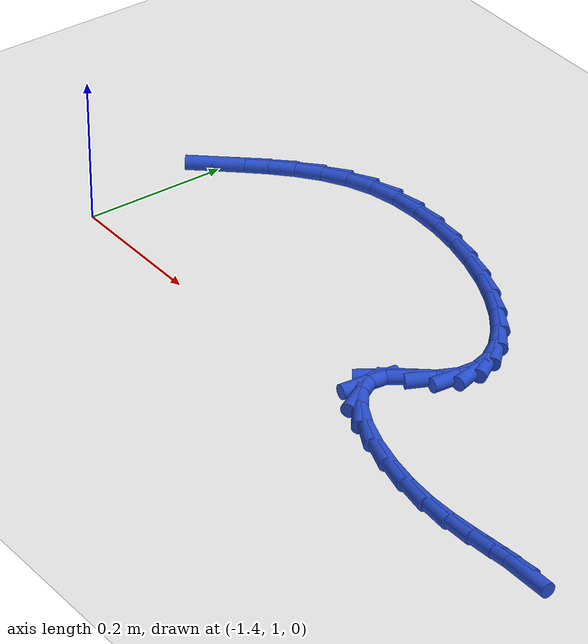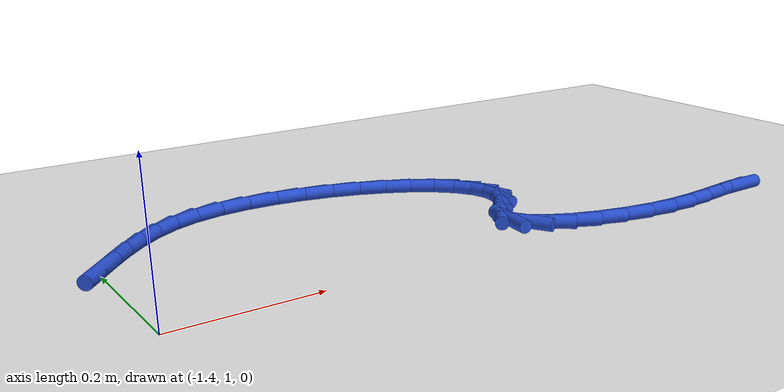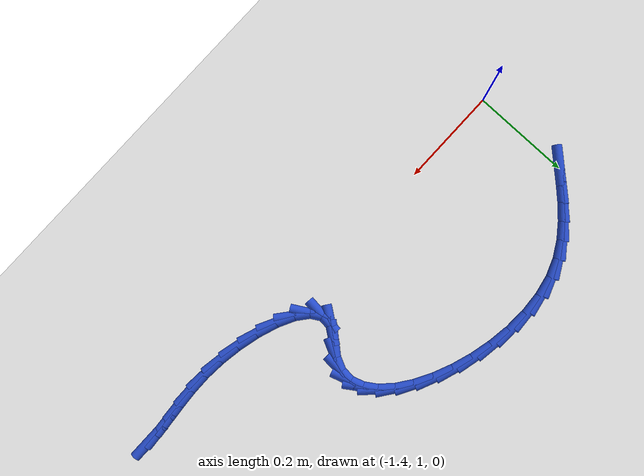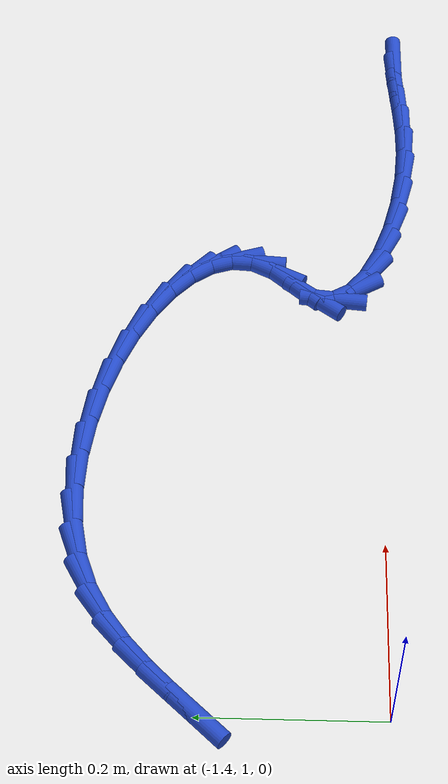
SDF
<sdf version="1.6">
 <world name="default">
  <model name="ground_plane">
   <static>1</static>
   <link name="link">
    <collision name="collision">
     <geometry><plane><normal>0 0 1</normal><size>100 100</size></plane></geometry>
     <surface><friction><ode><mu>100</mu><mu2>50</mu2></ode></friction></surface>
    </collision>
    <visual name="visual">
     <cast_shadows>0</cast_shadows>
     <geometry><plane><normal>0 0 1</normal><size>100 100</size></plane></geometry>
     <material>
      <script><uri>file://media/materials/scripts/gazebo.material</uri><name>Gazebo/WhiteGlow</name></script>
     </material>
    </visual>
   </link>
  </model>
  <model name="line">
   <link name="link_36">
    <pose>-0.48088167371348317 0.9720224073657954 0.01 0 1.57 0.003934838977855753</pose>
    <collision name="collision">
     <geometry><cylinder><radius>0.01</radius><length>0.08</length></cylinder></geometry>
    </collision>
    <visual name="visual">
     <material>
      <script><name>Gazebo/Blue</name><uri>file://media/materials/scripts/gazebo.material</uri></script>
     </material>
     <geometry><cylinder><radius>0.01</radius><length>0.08</length></cylinder></geometry>
    </visual>
   </link>
   <link name="link_37">
    <pose>-0.5086573627138247 0.9719131139380176 0.01 0 1.57 0.07898812055758157</pose>
    <collision name="collision">
     <geometry><cylinder><radius>0.01</radius><length>0.08</length></cylinder></geometry>
    </collision>
    <visual name="visual">
     <material>
      <script><name>Gazebo/Blue</name><uri>file://media/materials/scripts/gazebo.material</uri></script>
     </material>
     <geometry><cylinder><radius>0.01</radius><length>0.08</length></cylinder></geometry>
    </visual>
   </link>
   <link name="link_38">
    <pose>-0.5385993778721694 0.9695431194878243 0.01 0 1.57 0.09808770693141301</pose>
    <collision name="collision">
     <geometry><cylinder><radius>0.01</radius><length>0.08</length></cylinder></geometry>
    </collision>
    <visual name="visual">
     <material>
      <script><name>Gazebo/Blue</name><uri>file://media/materials/scripts/gazebo.material</uri></script>
     </material>
     <geometry><cylinder><radius>0.01</radius><length>0.08</length></cylinder></geometry>
    </visual>
   </link>
   <link name="link_39">
    <pose>-0.570962925528936 0.9663584332537161 0.01 0 1.57 0.07274094890611618</pose>
    <collision name="collision">
     <geometry><cylinder><radius>0.01</radius><length>0.08</length></cylinder></geometry>
    </collision>
    <visual name="visual">
     <material>
      <script><name>Gazebo/Blue</name><uri>file://media/materials/scripts/gazebo.material</uri></script>
     </material>
     <geometry><cylinder><radius>0.01</radius><length>0.08</length></cylinder></geometry>
    </visual>
   </link>
   <link name="link_40">
    <pose>-0.6060032120245422 0.9638050644741935 0.01 0 1.57 0.012535927665842815</pose>
    <collision name="collision">
     <geometry><cylinder><radius>0.01</radius><length>0.08</length></cylinder></geometry>
    </collision>
    <visual name="visual">
     <material>
      <script><name>Gazebo/Blue</name><uri>file://media/materials/scripts/gazebo.material</uri></script>
     </material>
     <geometry><cylinder><radius>0.01</radius><length>0.08</length></cylinder></geometry>
    </visual>
   </link>
   <link name="link_41">
    <pose>-0.6439754436994063 0.9633290223877563 0.01 0 1.57 -0.073056312298346</pose>
    <collision name="collision">
     <geometry><cylinder><radius>0.01</radius><length>0.08</length></cylinder></geometry>
    </collision>
    <visual name="visual">
     <material>
      <script><name>Gazebo/Blue</name><uri>file://media/materials/scripts/gazebo.material</uri></script>
     </material>
     <geometry><cylinder><radius>0.01</radius><length>0.08</length></cylinder></geometry>
    </visual>
   </link>
   <link name="link_42">
    <pose>-0.6850713372633097 0.9663366895923248 0.01 0 1.57 -0.16156675859563335</pose>
    <collision name="collision">
     <geometry><cylinder><radius>0.01</radius><length>0.08</length></cylinder></geometry>
    </collision>
    <visual name="visual">
     <material>
      <script><name>Gazebo/Blue</name><uri>file://media/materials/scripts/gazebo.material</uri></script>
     </material>
     <geometry><cylinder><radius>0.01</radius><length>0.08</length></cylinder></geometry>
    </visual>
   </link>
   <link name="link_43">
    <pose>-0.7280529850939443 0.9733421579447216 0.01 0 1.57 -0.246792449291581</pose>
    <collision name="collision">
     <geometry><cylinder><radius>0.01</radius><length>0.08</length></cylinder></geometry>
    </collision>
    <visual name="visual">
     <material>
      <script><name>Gazebo/Blue</name><uri>file://media/materials/scripts/gazebo.material</uri></script>
     </material>
     <geometry><cylinder><radius>0.01</radius><length>0.08</length></cylinder></geometry>
    </visual>
   </link>
   <link name="link_44">
    <pose>-0.77026967154288 0.9839777243488143 0.01 0 1.57 -0.343582504696271</pose>
    <collision name="collision">
     <geometry><cylinder><radius>0.01</radius><length>0.08</length></cylinder></geometry>
    </collision>
    <visual name="visual">
     <material>
      <script><name>Gazebo/Blue</name><uri>file://media/materials/scripts/gazebo.material</uri></script>
     </material>
     <geometry><cylinder><radius>0.01</radius><length>0.08</length></cylinder></geometry>
    </visual>
   </link>
   <link name="link_45">
    <pose>-0.8090105547398543 0.9978381583176504 0.01 0 1.57 -0.47350079707516657</pose>
    <collision name="collision">
     <geometry><cylinder><radius>0.01</radius><length>0.08</length></cylinder></geometry>
    </collision>
    <visual name="visual">
     <material>
      <script><name>Gazebo/Blue</name><uri>file://media/materials/scripts/gazebo.material</uri></script>
     </material>
     <geometry><cylinder><radius>0.01</radius><length>0.08</length></cylinder></geometry>
    </visual>
   </link>
   <link name="link_46">
    <pose>-0.8415647928146066 1.014518229364278 0.01 0 1.57 -0.6790837517820342</pose>
    <collision name="collision">
     <geometry><cylinder><radius>0.01</radius><length>0.08</length></cylinder></geometry>
    </collision>
    <visual name="visual">
     <material>
      <script><name>Gazebo/Blue</name><uri>file://media/materials/scripts/gazebo.material</uri></script>
     </material>
     <geometry><cylinder><radius>0.01</radius><length>0.08</length></cylinder></geometry>
    </visual>
   </link>
   <link name="link_47">
    <pose>-0.8652215438968757 1.033612707001745 0.01 0 1.57 -1.052036389093886</pose>
    <collision name="collision">
     <geometry><cylinder><radius>0.01</radius><length>0.08</length></cylinder></geometry>
    </collision>
    <visual name="visual">
     <material>
      <script><name>Gazebo/Blue</name><uri>file://media/materials/scripts/gazebo.material</uri></script>
     </material>
     <geometry><cylinder><radius>0.01</radius><length>0.08</length></cylinder></geometry>
    </visual>
   </link>
   <link name="link_48">
    <pose>-0.8772699661163998 1.0547163607430983 0.01 0 1.57 1.4711281723420833</pose>
    <collision name="collision">
     <geometry><cylinder><radius>0.01</radius><length>0.08</length></cylinder></geometry>
    </collision>
    <visual name="visual">
     <material>
      <script><name>Gazebo/Blue</name><uri>file://media/materials/scripts/gazebo.material</uri></script>
     </material>
     <geometry><cylinder><radius>0.01</radius><length>0.08</length></cylinder></geometry>
    </visual>
   </link>
   <link name="link_49">
    <pose>-0.8749992176029183 1.0774239601013862 0.01 0 1.57 0.945119175996891</pose>
    <collision name="collision">
     <geometry><cylinder><radius>0.01</radius><length>0.08</length></cylinder></geometry>
    </collision>
    <visual name="visual">
     <material>
      <script><name>Gazebo/Blue</name><uri>file://media/materials/scripts/gazebo.material</uri></script>
     </material>
     <geometry><cylinder><radius>0.01</radius><length>0.08</length></cylinder></geometry>
    </visual>
   </link>
   <link name="link_50">
    <pose>-0.8577183418856522 1.101341644554557 0.01 0 1.57 0.8644308224118262</pose>
    <collision name="collision">
     <geometry><cylinder><radius>0.01</radius><length>0.08</length></cylinder></geometry>
    </collision>
    <visual name="visual">
     <material>
      <script><name>Gazebo/Blue</name><uri>file://media/materials/scripts/gazebo.material</uri></script>
     </material>
     <geometry><cylinder><radius>0.01</radius><length>0.08</length></cylinder></geometry>
    </visual>
   </link>
   <link name="link_51">
    <pose>-0.8365578842101027 1.1261420969892197 0.01 0 1.57 1.1188612966358709</pose>
    <collision name="collision">
     <geometry><cylinder><radius>0.01</radius><length>0.08</length></cylinder></geometry>
    </collision>
    <visual name="visual">
     <material>
      <script><name>Gazebo/Blue</name><uri>file://media/materials/scripts/gazebo.material</uri></script>
     </material>
     <geometry><cylinder><radius>0.01</radius><length>0.08</length></cylinder></geometry>
    </visual>
   </link>
   <link name="link_52">
    <pose>-0.8242489779260815 1.1514980802542776 0.01 0 1.57 1.5028957018875282</pose>
    <collision name="collision">
     <geometry><cylinder><radius>0.01</radius><length>0.08</length></cylinder></geometry>
    </collision>
    <visual name="visual">
     <material>
      <script><name>Gazebo/Blue</name><uri>file://media/materials/scripts/gazebo.material</uri></script>
     </material>
     <geometry><cylinder><radius>0.01</radius><length>0.08</length></cylinder></geometry>
    </visual>
   </link>
   <link name="link_53">
    <pose>-0.8225158171109846 1.1769838018077912 0.01 0 1.57 -1.2721895305204625</pose>
    <collision name="collision">
     <geometry><cylinder><radius>0.01</radius><length>0.08</length></cylinder></geometry>
    </collision>
    <visual name="visual">
     <material>
      <script><name>Gazebo/Blue</name><uri>file://media/materials/scripts/gazebo.material</uri></script>
     </material>
     <geometry><cylinder><radius>0.01</radius><length>0.08</length></cylinder></geometry>
    </visual>
   </link>
   <link name="link_54">
    <pose>-0.8302616852094674 1.2021482159791834 0.01 0 1.57 -0.9865836661304525</pose>
    <collision name="collision">
     <geometry><cylinder><radius>0.01</radius><length>0.08</length></cylinder></geometry>
    </collision>
    <visual name="visual">
     <material>
      <script><name>Gazebo/Blue</name><uri>file://media/materials/scripts/gazebo.material</uri></script>
     </material>
     <geometry><cylinder><radius>0.01</radius><length>0.08</length></cylinder></geometry>
    </visual>
   </link>
   <link name="link_55">
    <pose>-0.8463898642056272 1.226540277084801 0.01 0 1.57 -0.7801363675360878</pose>
    <collision name="collision">
     <geometry><cylinder><radius>0.01</radius><length>0.08</length></cylinder></geometry>
    </collision>
    <visual name="visual">
     <material>
      <script><name>Gazebo/Blue</name><uri>file://media/materials/scripts/gazebo.material</uri></script>
     </material>
     <geometry><cylinder><radius>0.01</radius><length>0.08</length></cylinder></geometry>
    </visual>
   </link>
   <link name="link_56">
    <pose>-0.86980363608356 1.24970893944099 0.01 0 1.57 -0.6280229946637196</pose>
    <collision name="collision">
     <geometry><cylinder><radius>0.01</radius><length>0.08</length></cylinder></geometry>
    </collision>
    <visual name="visual">
     <material>
      <script><name>Gazebo/Blue</name><uri>file://media/materials/scripts/gazebo.material</uri></script>
     </material>
     <geometry><cylinder><radius>0.01</radius><length>0.08</length></cylinder></geometry>
    </visual>
   </link>
   <link name="link_57">
    <pose>-0.899406282827363 1.271203157364097 0.01 0 1.57 -0.5091628836332616</pose>
    <collision name="collision">
     <geometry><cylinder><radius>0.01</radius><length>0.08</length></cylinder></geometry>
    </collision>
    <visual name="visual">
     <material>
      <script><name>Gazebo/Blue</name><uri>file://media/materials/scripts/gazebo.material</uri></script>
     </material>
     <geometry><cylinder><radius>0.01</radius><length>0.08</length></cylinder></geometry>
    </visual>
   </link>
   <link name="link_58">
    <pose>-0.9341010864211325 1.2905718851704688 0.01 0 1.57 -0.40948259705434087</pose>
    <collision name="collision">
     <geometry><cylinder><radius>0.01</radius><length>0.08</length></cylinder></geometry>
    </collision>
    <visual name="visual">
     <material>
      <script><name>Gazebo/Blue</name><uri>file://media/materials/scripts/gazebo.material</uri></script>
     </material>
     <geometry><cylinder><radius>0.01</radius><length>0.08</length></cylinder></geometry>
    </visual>
   </link>
   <link name="link_59">
    <pose>-0.9727913288489658 1.3073640771764525 0.01 0 1.57 -0.31962012750378194</pose>
    <collision name="collision">
     <geometry><cylinder><radius>0.01</radius><length>0.08</length></cylinder></geometry>
    </collision>
    <visual name="visual">
     <material>
      <script><name>Gazebo/Blue</name><uri>file://media/materials/scripts/gazebo.material</uri></script>
     </material>
     <geometry><cylinder><radius>0.01</radius><length>0.08</length></cylinder></geometry>
    </visual>
   </link>
   <link name="link_60">
    <pose>-1.0143802920949585 1.3211286876983939 0.01 0 1.57 -0.2327571639845759</pose>
    <collision name="collision">
     <geometry><cylinder><radius>0.01</radius><length>0.08</length></cylinder></geometry>
    </collision>
    <visual name="visual">
     <material>
      <script><name>Gazebo/Blue</name><uri>file://media/materials/scripts/gazebo.material</uri></script>
     </material>
     <geometry><cylinder><radius>0.01</radius><length>0.08</length></cylinder></geometry>
    </visual>
   </link>
   <link name="link_61">
    <pose>-1.0577712581432088 1.3314146710526407 0.01 0 1.57 -0.14316017998984593</pose>
    <collision name="collision">
     <geometry><cylinder><radius>0.01</radius><length>0.08</length></cylinder></geometry>
    </collision>
    <visual name="visual">
     <material>
      <script><name>Gazebo/Blue</name><uri>file://media/materials/scripts/gazebo.material</uri></script>
     </material>
     <geometry><cylinder><radius>0.01</radius><length>0.08</length></cylinder></geometry>
    </visual>
   </link>
   <link name="link_62">
    <pose>-1.101867508977812 1.3377709815555383 0.01 0 1.57 -0.0451723204915118</pose>
    <collision name="collision">
     <geometry><cylinder><radius>0.01</radius><length>0.08</length></cylinder></geometry>
    </collision>
    <visual name="visual">
     <material>
      <script><name>Gazebo/Blue</name><uri>file://media/materials/scripts/gazebo.material</uri></script>
     </material>
     <geometry><cylinder><radius>0.01</radius><length>0.08</length></cylinder></geometry>
    </visual>
   </link>
   <link name="link_63">
    <pose>-1.145572326582866 1.339746573523434 0.01 0 1.57 0.06755214605993315</pose>
    <collision name="collision">
     <geometry><cylinder><radius>0.01</radius><length>0.08</length></cylinder></geometry>
    </collision>
    <visual name="visual">
     <material>
      <script><name>Gazebo/Blue</name><uri>file://media/materials/scripts/gazebo.material</uri></script>
     </material>
     <geometry><cylinder><radius>0.01</radius><length>0.08</length></cylinder></geometry>
    </visual>
   </link>
   <link name="link_64">
    <pose>-1.1877889929424663 1.336890401272675 0.01 0 1.57 0.20254880623692054</pose>
    <collision name="collision">
     <geometry><cylinder><radius>0.01</radius><length>0.08</length></cylinder></geometry>
    </collision>
    <visual name="visual">
     <material>
      <script><name>Gazebo/Blue</name><uri>file://media/materials/scripts/gazebo.material</uri></script>
     </material>
     <geometry><cylinder><radius>0.01</radius><length>0.08</length></cylinder></geometry>
    </visual>
   </link>
   <link name="link_65">
    <pose>-1.2274207900407101 1.3287514191196068 0.01 0 1.57 0.3648283171285513</pose>
    <collision name="collision">
     <geometry><cylinder><radius>0.01</radius><length>0.08</length></cylinder></geometry>
    </collision>
    <visual name="visual">
     <material>
      <script><name>Gazebo/Blue</name><uri>file://media/materials/scripts/gazebo.material</uri></script>
     </material>
     <geometry><cylinder><radius>0.01</radius><length>0.08</length></cylinder></geometry>
    </visual>
   </link>
   <link name="link_66">
    <pose>-1.2634730539737098 1.3149821466862484 0.01 0 1.57 0.5236739812597687</pose>
    <collision name="collision">
     <geometry><cylinder><radius>0.01</radius><length>0.08</length></cylinder></geometry>
    </collision>
    <visual name="visual">
     <material>
      <script><name>Gazebo/Blue</name><uri>file://media/materials/scripts/gazebo.material</uri></script>
     </material>
     <geometry><cylinder><radius>0.01</radius><length>0.08</length></cylinder></geometry>
    </visual>
   </link>
   <link name="link_67">
    <pose>-1.29593715188715 1.2962357355636238 0.01 0 1.57 0.6531140520029104</pose>
    <collision name="collision">
     <geometry><cylinder><radius>0.01</radius><length>0.08</length></cylinder></geometry>
    </collision>
    <visual name="visual">
     <material>
      <script><name>Gazebo/Blue</name><uri>file://media/materials/scripts/gazebo.material</uri></script>
     </material>
     <geometry><cylinder><radius>0.01</radius><length>0.08</length></cylinder></geometry>
    </visual>
   </link>
   <link name="link_68">
    <pose>-1.3253568120599895 1.2737258777117726 0.01 0 1.57 0.7494066978372222</pose>
    <collision name="collision">
     <geometry><cylinder><radius>0.01</radius><length>0.08</length></cylinder></geometry>
    </collision>
    <visual name="visual">
     <material>
      <script><name>Gazebo/Blue</name><uri>file://media/materials/scripts/gazebo.material</uri></script>
     </material>
     <geometry><cylinder><radius>0.01</radius><length>0.08</length></cylinder></geometry>
    </visual>
   </link>
   <link name="link_69">
    <pose>-1.3522818435271449 1.2486724358891201 0.01 0 1.57 0.8125920547162688</pose>
    <collision name="collision">
     <geometry><cylinder><radius>0.01</radius><length>0.08</length></cylinder></geometry>
    </collision>
    <visual name="visual">
     <material>
      <script><name>Gazebo/Blue</name><uri>file://media/materials/scripts/gazebo.material</uri></script>
     </material>
     <geometry><cylinder><radius>0.01</radius><length>0.08</length></cylinder></geometry>
    </visual>
   </link>
   <link name="link_70">
    <pose>-1.377262055323533 1.222295272854091 0.01 0 1.57 0.8431735931201993</pose>
    <collision name="collision">
     <geometry><cylinder><radius>0.01</radius><length>0.08</length></cylinder></geometry>
    </collision>
    <visual name="visual">
     <material>
      <script><name>Gazebo/Blue</name><uri>file://media/materials/scripts/gazebo.material</uri></script>
     </material>
     <geometry><cylinder><radius>0.01</radius><length>0.08</length></cylinder></geometry>
    </visual>
   </link>
   <link name="link_71">
    <pose>-1.400847256484072 1.1958142513651102 0.01 0 1.57 0.8399125763637683</pose>
    <collision name="collision">
     <geometry><cylinder><radius>0.01</radius><length>0.08</length></cylinder></geometry>
    </collision>
    <visual name="visual">
     <material>
      <script><name>Gazebo/Blue</name><uri>file://media/materials/scripts/gazebo.material</uri></script>
     </material>
     <geometry><cylinder><radius>0.01</radius><length>0.08</length></cylinder></geometry>
    </visual>
   </link>
  </model>
 </world>
</sdf>
